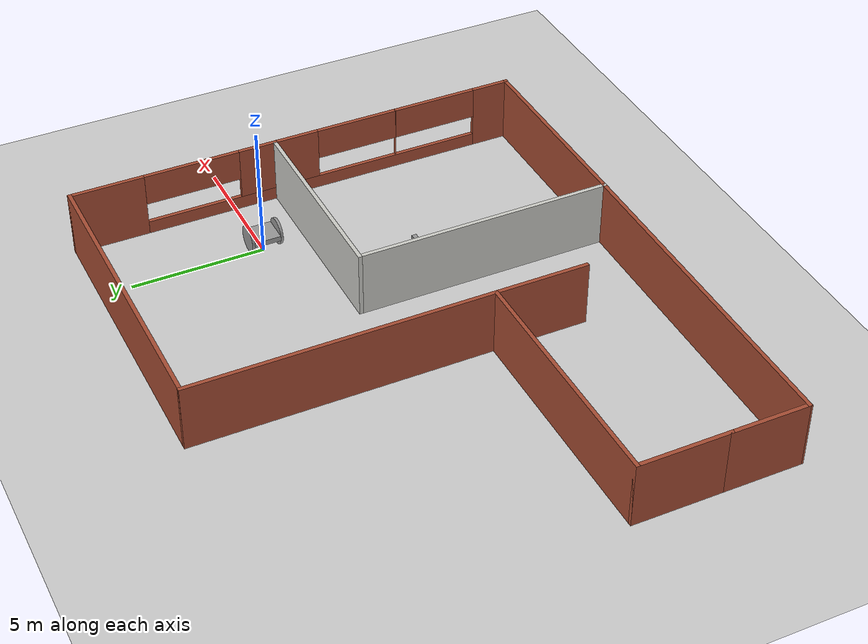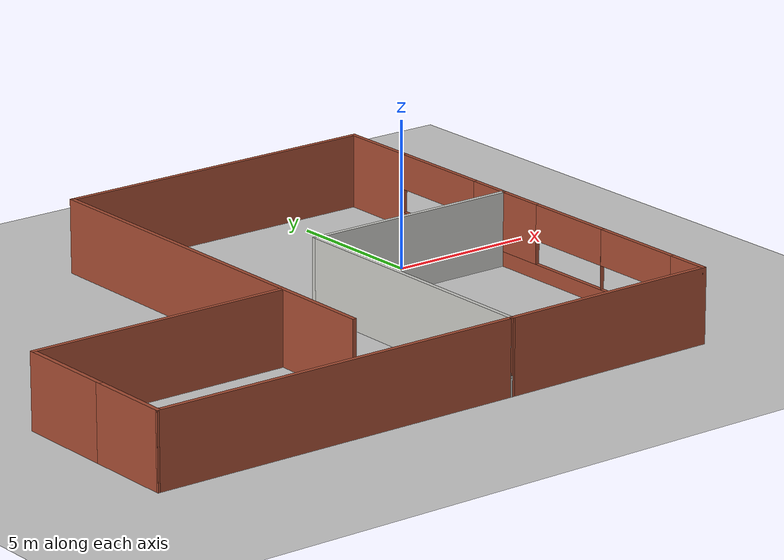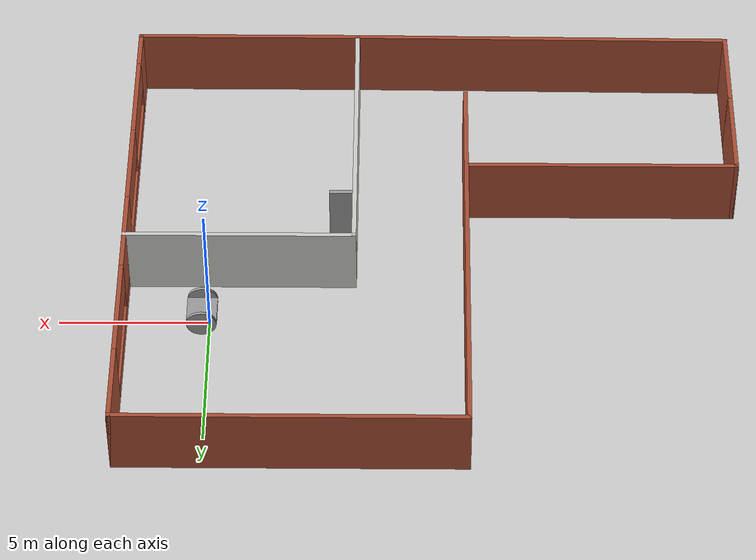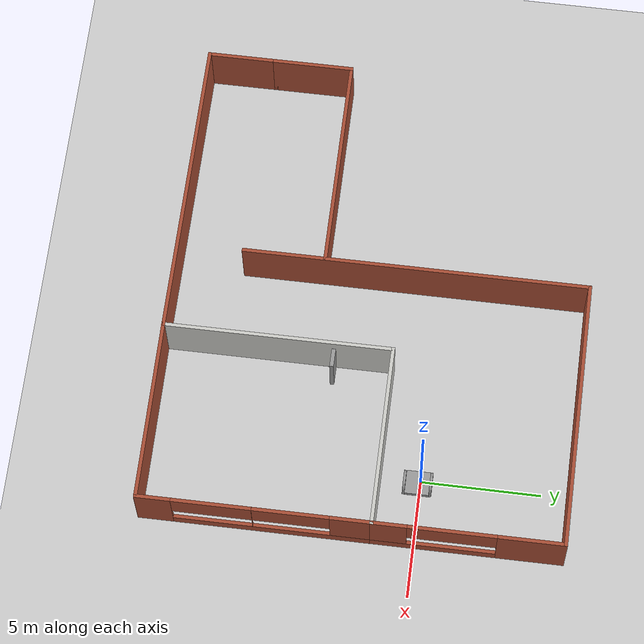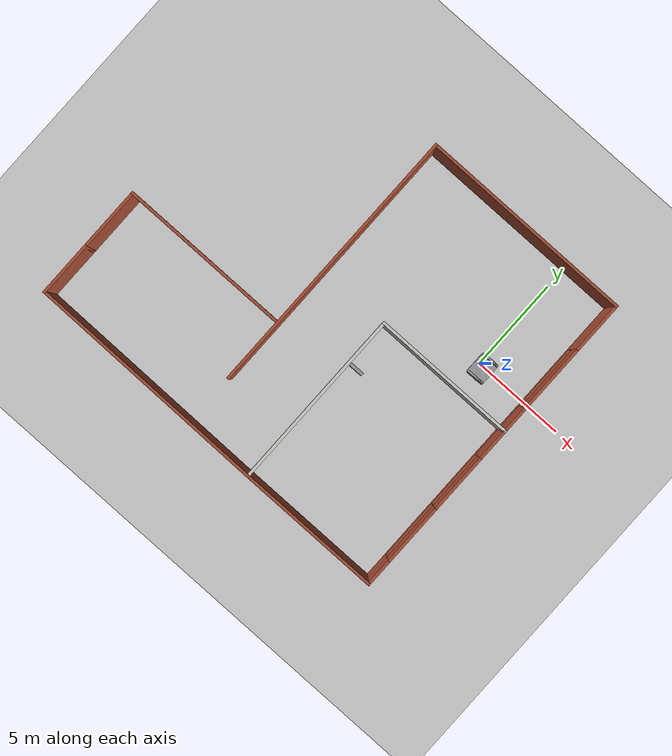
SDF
<sdf version="1.6">
 <world name="default">
  <light name="sun" type="directional">
   <pose>0 0 10 0 -0 0</pose>
   <diffuse>0.8 0.8 0.8 1</diffuse>
   <specular>0.2 0.2 0.2 1</specular>
   <attenuation>
    <range>1000</range>
    <constant>0.9</constant>
    <linear>0.01</linear>
    <quadratic>0.001</quadratic>
   </attenuation>
   <direction>-0.5 0.1 -0.9</direction>
  </light>
  <model name="ground_plane">
   <static>1</static>
   <link name="link">
    <collision name="collision">
     <geometry><plane><normal>0 0 1</normal><size>100 100</size></plane></geometry>
     <surface>
      <contact><collide_bitmask>65535</collide_bitmask></contact>
      <friction><ode><mu>100</mu><mu2>50</mu2></ode></friction>
     </surface>
    </collision>
    <visual name="visual">
     <cast_shadows>0</cast_shadows>
     <geometry><plane><normal>0 0 1</normal><size>100 100</size></plane></geometry>
     <material>
      <script><uri>file://media/materials/scripts/gazebo.material</uri><name>Gazebo/Grey</name></script>
     </material>
    </visual>
   </link>
  </model>
  <gravity>0 0 -9.8</gravity>
  <magnetic_field>6e-06 2.3e-05 -4.2e-05</magnetic_field>
  <atmosphere type="adiabatic"/>
  <physics name="default_physics" default="0" type="ode">
   <max_step_size>0.001</max_step_size>
   <real_time_factor>1</real_time_factor>
   <real_time_update_rate>1000</real_time_update_rate>
  </physics>
  <scene><ambient>0.4 0.4 0.4 1</ambient><background>0.7 0.7 0.7 1</background><shadows>1</shadows></scene>
  <spherical_coordinates>
   <surface_model>EARTH_WGS84</surface_model>
   <latitude_deg>0</latitude_deg>
   <longitude_deg>0</longitude_deg>
   <elevation>0</elevation>
   <heading_deg>0</heading_deg>
  </spherical_coordinates>
  <model name="robot-model">
   <link name="link_0">
    <pose>0 0 -0.000106 0 -0 0</pose>
    <inertial>
     <mass>1</mass>
     <inertia>
      <ixx>0.166667</ixx>
      <ixy>0</ixy>
      <ixz>0</ixz>
      <iyy>0.166667</iyy>
      <iyz>0</iyz>
      <izz>0.166667</izz>
     </inertia>
    </inertial>
    <visual name="visual">
     <geometry><box><size>1 1 0.2</size></box></geometry>
     <material>
      <lighting>1</lighting>
      <script><uri>file://media/materials/scripts/gazebo.material</uri><name>Gazebo/Grey</name></script>
      <shader type="pixel"><normal_map>__default__</normal_map></shader>
      <ambient>0.3 0.3 0.3 1</ambient>
      <diffuse>0.7 0.7 0.7 1</diffuse>
      <specular>0.01 0.01 0.01 1</specular>
      <emissive>0 0 0 1</emissive>
     </material>
    </visual>
    <collision name="collision">
     <geometry><box><size>1 1 0.2</size></box></geometry>
     <surface>
      <friction>
       <ode><mu>1</mu><mu2>1</mu2><fdir1>0 0 0</fdir1><slip1>0</slip1><slip2>0</slip2></ode>
       <torsional>
        <coefficient>1</coefficient>
        <patch_radius>0</patch_radius>
        <surface_radius>0</surface_radius>
        <use_patch_radius>1</use_patch_radius>
        <ode><slip>0</slip></ode>
       </torsional>
      </friction>
      <bounce><restitution_coefficient>0</restitution_coefficient><threshold>1e+06</threshold></bounce>
      <contact>
       <collide_without_contact>0</collide_without_contact>
       <collide_without_contact_bitmask>1</collide_without_contact_bitmask>
       <collide_bitmask>1</collide_bitmask>
       <ode>
        <soft_cfm>0</soft_cfm>
        <soft_erp>0.2</soft_erp>
        <kp>1e+13</kp>
        <kd>1</kd>
        <max_vel>0.01</max_vel>
        <min_depth>0</min_depth>
       </ode>
       <bullet>
        <split_impulse>1</split_impulse>
        <split_impulse_penetration_threshold>-0.01</split_impulse_penetration_threshold>
        <soft_cfm>0</soft_cfm>
        <soft_erp>0.2</soft_erp>
        <kp>1e+13</kp>
        <kd>1</kd>
       </bullet>
      </contact>
     </surface>
    </collision>
   </link>
   <link name="link_1">
    <pose>0 -0.550048 5.3e-05 1.5707 -0 0</pose>
    <inertial>
     <mass>1</mass>
     <inertia><ixx>0.145833</ixx><ixy>0</ixy><ixz>0</ixz><iyy>0.145833</iyy><iyz>0</iyz><izz>0.125</izz></inertia>
    </inertial>
    <visual name="visual">
     <geometry><cylinder><radius>0.5</radius><length>0.1</length></cylinder></geometry>
     <material>
      <lighting>1</lighting>
      <script><uri>file://media/materials/scripts/gazebo.material</uri><name>Gazebo/Grey</name></script>
      <shader type="pixel"><normal_map>__default__</normal_map></shader>
      <ambient>0.3 0.3 0.3 1</ambient>
      <diffuse>0.7 0.7 0.7 1</diffuse>
      <specular>0.01 0.01 0.01 1</specular>
      <emissive>0 0 0 1</emissive>
     </material>
    </visual>
    <collision name="collision">
     <geometry><cylinder><radius>0.5</radius><length>0.1</length></cylinder></geometry>
     <surface>
      <friction>
       <ode><mu>1</mu><mu2>1</mu2><fdir1>0 0 0</fdir1><slip1>0</slip1><slip2>0</slip2></ode>
       <torsional>
        <coefficient>1</coefficient>
        <patch_radius>0</patch_radius>
        <surface_radius>0</surface_radius>
        <use_patch_radius>1</use_patch_radius>
        <ode><slip>0</slip></ode>
       </torsional>
      </friction>
      <bounce><restitution_coefficient>0</restitution_coefficient><threshold>1e+06</threshold></bounce>
      <contact>
       <collide_without_contact>0</collide_without_contact>
       <collide_without_contact_bitmask>1</collide_without_contact_bitmask>
       <collide_bitmask>1</collide_bitmask>
       <ode>
        <soft_cfm>0</soft_cfm>
        <soft_erp>0.2</soft_erp>
        <kp>1e+13</kp>
        <kd>1</kd>
        <max_vel>0.01</max_vel>
        <min_depth>0</min_depth>
       </ode>
       <bullet>
        <split_impulse>1</split_impulse>
        <split_impulse_penetration_threshold>-0.01</split_impulse_penetration_threshold>
        <soft_cfm>0</soft_cfm>
        <soft_erp>0.2</soft_erp>
        <kp>1e+13</kp>
        <kd>1</kd>
       </bullet>
      </contact>
     </surface>
    </collision>
   </link>
   <link name="link_1_clone">
    <pose>0 0.550048 5.3e-05 1.5707 -0 0</pose>
    <inertial>
     <mass>1</mass>
     <inertia><ixx>0.145833</ixx><ixy>0</ixy><ixz>0</ixz><iyy>0.145833</iyy><iyz>0</iyz><izz>0.125</izz></inertia>
    </inertial>
    <visual name="visual">
     <geometry><cylinder><radius>0.5</radius><length>0.1</length></cylinder></geometry>
     <material>
      <lighting>1</lighting>
      <script><uri>file://media/materials/scripts/gazebo.material</uri><name>Gazebo/Grey</name></script>
      <shader type="pixel"><normal_map>__default__</normal_map></shader>
      <ambient>0.3 0.3 0.3 1</ambient>
      <diffuse>0.7 0.7 0.7 1</diffuse>
      <specular>0.01 0.01 0.01 1</specular>
      <emissive>0 0 0 1</emissive>
     </material>
    </visual>
    <collision name="collision">
     <geometry><cylinder><radius>0.5</radius><length>0.1</length></cylinder></geometry>
     <surface>
      <friction>
       <ode><mu>1</mu><mu2>1</mu2><fdir1>0 0 0</fdir1><slip1>0</slip1><slip2>0</slip2></ode>
       <torsional>
        <coefficient>1</coefficient>
        <patch_radius>0</patch_radius>
        <surface_radius>0</surface_radius>
        <use_patch_radius>1</use_patch_radius>
        <ode><slip>0</slip></ode>
       </torsional>
      </friction>
      <bounce><restitution_coefficient>0</restitution_coefficient><threshold>1e+06</threshold></bounce>
      <contact>
       <collide_without_contact>0</collide_without_contact>
       <collide_without_contact_bitmask>1</collide_without_contact_bitmask>
       <collide_bitmask>1</collide_bitmask>
       <ode>
        <soft_cfm>0</soft_cfm>
        <soft_erp>0.2</soft_erp>
        <kp>1e+13</kp>
        <kd>1</kd>
        <max_vel>0.01</max_vel>
        <min_depth>0</min_depth>
       </ode>
       <bullet>
        <split_impulse>1</split_impulse>
        <split_impulse_penetration_threshold>-0.01</split_impulse_penetration_threshold>
        <soft_cfm>0</soft_cfm>
        <soft_erp>0.2</soft_erp>
        <kp>1e+13</kp>
        <kd>1</kd>
       </bullet>
      </contact>
     </surface>
    </collision>
   </link>
   <joint name="link_0_JOINT_0" type="revolute">
    <parent>link_0</parent>
    <child>link_1</child>
    <axis>
     <xyz>0 0 1</xyz>
     <use_parent_model_frame>0</use_parent_model_frame>
     <limit>
      <lower>-1.79769e+308</lower>
      <upper>1.79769e+308</upper>
      <effort>-1</effort>
      <velocity>-1</velocity>
     </limit>
     <dynamics>
      <spring_reference>0</spring_reference>
      <spring_stiffness>0</spring_stiffness>
      <damping>0</damping>
     </dynamics>
    </axis>
    <physics>
     <ode><limit><cfm>0</cfm><erp>0.2</erp></limit><suspension><cfm>0</cfm><erp>0.2</erp></suspension></ode>
    </physics>
   </joint>
   <joint name="link_0_JOINT_1" type="revolute">
    <parent>link_0</parent>
    <child>link_1_clone</child>
    <axis>
     <xyz>0 0 1</xyz>
     <use_parent_model_frame>0</use_parent_model_frame>
     <limit>
      <lower>-1.79769e+308</lower>
      <upper>1.79769e+308</upper>
      <effort>-1</effort>
      <velocity>-1</velocity>
     </limit>
     <dynamics>
      <spring_reference>0</spring_reference>
      <spring_stiffness>0</spring_stiffness>
      <damping>0</damping>
     </dynamics>
    </axis>
    <physics>
     <ode><limit><cfm>0</cfm><erp>0.2</erp></limit><suspension><cfm>0</cfm><erp>0.2</erp></suspension></ode>
    </physics>
   </joint>
   <static>0</static>
   <pose>0.239846 -0.110911 0.500106 0 -0 0</pose>
  </model>
  <model name="building-model">
   <pose>-7.41019 -2.6033 0 0 -0 0</pose>
   <link name="Door_0">
    <collision name="Door_0_Collision">
     <geometry><box><size>0.9 0.17 2</size></box></geometry>
     <pose>0 0 1 0 -0 0</pose>
    </collision>
    <visual name="Door_0_Visual">
     <pose>0 0 1 0 -0 0</pose>
     <geometry><box><size>0.9 0.17 2</size></box></geometry>
     <material>
      <script><uri>file://media/materials/scripts/gazebo.material</uri><name>Gazebo/Grey</name></script>
     </material>
    </visual>
    <pose>3.04476 -1.59285 0 0 -0 0</pose>
   </link>
   <link name="Wall_1">
    <collision name="Wall_1_Collision">
     <geometry><box><size>14.75 0.15 2.5</size></box></geometry>
     <pose>0 0 1.25 0 -0 0</pose>
    </collision>
    <visual name="Wall_1_Visual">
     <pose>0 0 1.25 0 -0 0</pose>
     <geometry><box><size>14.75 0.15 2.5</size></box></geometry>
     <material>
      <script><uri>file://media/materials/scripts/gazebo.material</uri><name>Gazebo/Bricks</name></script>
      <ambient>1 1 1 1</ambient>
     </material>
     <meta><layer>0</layer></meta>
    </visual>
    <pose>-1.11923 1.42528 0 0 -0 1.5708</pose>
   </link>
   <link name="Wall_10">
    <collision name="Wall_10_Collision">
     <geometry><box><size>9.25 0.15 2.5</size></box></geometry>
     <pose>0 0 1.25 0 -0 0</pose>
    </collision>
    <visual name="Wall_10_Visual">
     <pose>0 0 1.25 0 -0 0</pose>
     <geometry><box><size>9.25 0.15 2.5</size></box></geometry>
     <material>
      <script><uri>file://media/materials/scripts/gazebo.material</uri><name>Gazebo/Bricks</name></script>
      <ambient>1 1 1 1</ambient>
     </material>
     <meta><layer>0</layer></meta>
    </visual>
    <pose>-5.6802 -2.42647 0 0 -0 0</pose>
   </link>
   <link name="Wall_18">
    <collision name="Wall_18_Collision">
     <geometry><box><size>3 0.15 2.5</size></box></geometry>
     <pose>0 0 1.25 0 -0 0</pose>
    </collision>
    <visual name="Wall_18_Visual">
     <pose>0 0 1.25 0 -0 0</pose>
     <geometry><box><size>3 0.15 2.5</size></box></geometry>
     <material>
      <script><uri>file://media/materials/scripts/gazebo.material</uri><name>Gazebo/Bricks</name></script>
      <ambient>1 1 1 1</ambient>
     </material>
     <meta><layer>0</layer></meta>
    </visual>
    <pose>-10.2302 -7.20148 0 0 0 -1.5708</pose>
   </link>
   <link name="Wall_19">
    <collision name="Wall_19_Collision">
     <geometry><box><size>13.0113 0.15 2.5</size></box></geometry>
     <pose>0 0 1.25 0 -0 0</pose>
    </collision>
    <visual name="Wall_19_Visual">
     <pose>0 0 1.25 0 -0 0</pose>
     <geometry><box><size>13.0113 0.15 2.5</size></box></geometry>
     <material>
      <script><uri>file://media/materials/scripts/gazebo.material</uri><name>Gazebo/Bricks</name></script>
      <ambient>1 1 1 1</ambient>
     </material>
     <meta><layer>0</layer></meta>
    </visual>
    <pose>-3.79971 -8.67559 0 0 0 -0.007638</pose>
   </link>
   <link name="Wall_2">
    <collision name="Wall_2_Collision">
     <geometry><box><size>11.5 0.15 2.5</size></box></geometry>
     <pose>0 0 1.25 0 -0 0</pose>
    </collision>
    <visual name="Wall_2_Visual">
     <pose>0 0 1.25 0 -0 0</pose>
     <geometry><box><size>11.5 0.15 2.5</size></box></geometry>
     <material>
      <script><uri>file://media/materials/scripts/gazebo.material</uri><name>Gazebo/Bricks</name></script>
      <ambient>1 1 1 1</ambient>
     </material>
     <meta><layer>0</layer></meta>
    </visual>
    <pose>4.55577 8.72528 0 0 -0 0</pose>
   </link>
   <link name="Wall_3">
    <pose>10.2308 4.80028 0 0 0 -1.5708</pose>
    <visual name="Wall_3_Visual_0">
     <pose>-2.58365 0 1.25 0 -0 0</pose>
     <geometry><box><size>2.8327 0.15 2.5</size></box></geometry>
     <material>
      <script><uri>file://media/materials/scripts/gazebo.material</uri><name>Gazebo/Bricks</name></script>
      <ambient>1 1 1 1</ambient>
     </material>
     <meta><layer>0</layer></meta>
    </visual>
    <collision name="Wall_3_Collision_0">
     <geometry><box><size>2.8327 0.15 2.5</size></box></geometry>
     <pose>-2.58365 0 1.25 0 -0 0</pose>
    </collision>
    <visual name="Wall_3_Visual_1">
     <pose>1.41635 0 0.25 0 -0 0</pose>
     <geometry><box><size>5.1673 0.15 0.5</size></box></geometry>
     <material>
      <script><uri>file://media/materials/scripts/gazebo.material</uri><name>Gazebo/Bricks</name></script>
      <ambient>1 1 1 1</ambient>
     </material>
     <meta><layer>0</layer></meta>
    </visual>
    <collision name="Wall_3_Collision_1">
     <geometry><box><size>5.1673 0.15 0.5</size></box></geometry>
     <pose>1.41635 0 0.25 0 -0 0</pose>
    </collision>
    <visual name="Wall_3_Visual_2">
     <pose>3.24442 0 1.5 0 -0 0</pose>
     <geometry><box><size>1.51117 0.15 2</size></box></geometry>
     <material>
      <script><uri>file://media/materials/scripts/gazebo.material</uri><name>Gazebo/Bricks</name></script>
      <ambient>1 1 1 1</ambient>
     </material>
     <meta><layer>0</layer></meta>
    </visual>
    <collision name="Wall_3_Collision_2">
     <geometry><box><size>1.51117 0.15 2</size></box></geometry>
     <pose>3.24442 0 1.5 0 -0 0</pose>
    </collision>
    <visual name="Wall_3_Visual_3">
     <pose>0.660769 0 1.9 0 -0 0</pose>
     <geometry><box><size>3.65613 0.15 1.2</size></box></geometry>
     <material>
      <script><uri>file://media/materials/scripts/gazebo.material</uri><name>Gazebo/Bricks</name></script>
      <ambient>1 1 1 1</ambient>
     </material>
     <meta><layer>0</layer></meta>
    </visual>
    <collision name="Wall_3_Collision_3">
     <geometry><box><size>3.65613 0.15 1.2</size></box></geometry>
     <pose>0.660769 0 1.9 0 -0 0</pose>
    </collision>
   </link>
   <link name="Wall_4">
    <collision name="Wall_4_Collision">
     <geometry><box><size>7.75 0.15 2.5</size></box></geometry>
     <pose>0 0 1.25 0 -0 0</pose>
    </collision>
    <visual name="Wall_4_Visual">
     <pose>0 0 1.25 0 -0 0</pose>
     <geometry><box><size>7.75 0.15 2.5</size></box></geometry>
     <material>
      <script><uri>file://media/materials/scripts/gazebo.material</uri><name>Gazebo/CeilingTiled</name></script>
      <ambient>1 1 1 1</ambient>
     </material>
     <meta><layer>0</layer></meta>
    </visual>
    <pose>6.43077 0.875285 0 0 -0 3.14159</pose>
   </link>
   <link name="Wall_5">
    <collision name="Wall_5_Collision">
     <geometry><box><size>9.75 0.15 2.5</size></box></geometry>
     <pose>0 0 1.25 0 -0 0</pose>
    </collision>
    <visual name="Wall_5_Visual">
     <pose>0 0 1.25 0 -0 0</pose>
     <geometry><box><size>9.75 0.15 2.5</size></box></geometry>
     <material>
      <script><uri>file://media/materials/scripts/gazebo.material</uri><name>Gazebo/CeilingTiled</name></script>
      <ambient>1 1 1 1</ambient>
     </material>
     <meta><layer>0</layer></meta>
    </visual>
    <pose>2.63077 -3.92471 0 0 0 -1.5708</pose>
   </link>
   <link name="Wall_6">
    <collision name="Wall_6_Collision">
     <geometry><box><size>7.75 0.15 2.5</size></box></geometry>
     <pose>0 0 1.25 0 -0 0</pose>
    </collision>
    <visual name="Wall_6_Visual">
     <pose>0 0 1.25 0 -0 0</pose>
     <geometry><box><size>7.75 0.15 2.5</size></box></geometry>
     <material>
      <script><uri>file://media/materials/scripts/gazebo.material</uri><name>Gazebo/Bricks</name></script>
      <ambient>1 1 1 1</ambient>
     </material>
     <meta><layer>0</layer></meta>
    </visual>
    <pose>6.43077 -8.72471 0 0 -0 0</pose>
   </link>
   <link name="Wall_7">
    <pose>10.2308 -3.92471 0 0 -0 1.5708</pose>
    <visual name="Wall_7_Visual_0">
     <pose>-4.12656 0 1.25 0 -0 0</pose>
     <geometry><box><size>1.49688 0.15 2.5</size></box></geometry>
     <material>
      <script><uri>file://media/materials/scripts/gazebo.material</uri><name>Gazebo/Bricks</name></script>
      <ambient>1 1 1 1</ambient>
     </material>
     <meta><layer>0</layer></meta>
    </visual>
    <collision name="Wall_7_Collision_0">
     <geometry><box><size>1.49688 0.15 2.5</size></box></geometry>
     <pose>-4.12656 0 1.25 0 -0 0</pose>
    </collision>
    <visual name="Wall_7_Visual_1">
     <pose>0.74844 0 0.25 0 -0 0</pose>
     <geometry><box><size>8.25312 0.15 0.5</size></box></geometry>
     <material>
      <script><uri>file://media/materials/scripts/gazebo.material</uri><name>Gazebo/Bricks</name></script>
      <ambient>1 1 1 1</ambient>
     </material>
     <meta><layer>0</layer></meta>
    </visual>
    <collision name="Wall_7_Collision_1">
     <geometry><box><size>8.25312 0.15 0.5</size></box></geometry>
     <pose>0.74844 0 0.25 0 -0 0</pose>
    </collision>
    <visual name="Wall_7_Visual_2">
     <pose>-0.081765 0 1.5 0 -0 0</pose>
     <geometry><box><size>0.004543 0.15 2</size></box></geometry>
     <material>
      <script><uri>file://media/materials/scripts/gazebo.material</uri><name>Gazebo/Bricks</name></script>
      <ambient>1 1 1 1</ambient>
     </material>
     <meta><layer>0</layer></meta>
    </visual>
    <collision name="Wall_7_Collision_2">
     <geometry><box><size>0.004543 0.15 2</size></box></geometry>
     <pose>-0.081765 0 1.5 0 -0 0</pose>
    </collision>
    <visual name="Wall_7_Visual_3">
     <pose>3.98445 0 1.5 0 -0 0</pose>
     <geometry><box><size>1.78109 0.15 2</size></box></geometry>
     <material>
      <script><uri>file://media/materials/scripts/gazebo.material</uri><name>Gazebo/Bricks</name></script>
      <ambient>1 1 1 1</ambient>
     </material>
     <meta><layer>0</layer></meta>
    </visual>
    <collision name="Wall_7_Collision_3">
     <geometry><box><size>1.78109 0.15 2</size></box></geometry>
     <pose>3.98445 0 1.5 0 -0 0</pose>
    </collision>
    <visual name="Wall_7_Visual_4">
     <pose>-1.73108 0 1.9 0 -0 0</pose>
     <geometry><box><size>3.29408 0.15 1.2</size></box></geometry>
     <material>
      <script><uri>file://media/materials/scripts/gazebo.material</uri><name>Gazebo/Bricks</name></script>
      <ambient>1 1 1 1</ambient>
     </material>
     <meta><layer>0</layer></meta>
    </visual>
    <collision name="Wall_7_Collision_4">
     <geometry><box><size>3.29408 0.15 1.2</size></box></geometry>
     <pose>-1.73108 0 1.9 0 -0 0</pose>
    </collision>
    <visual name="Wall_7_Visual_5">
     <pose>1.50721 0 1.9 0 -0 0</pose>
     <geometry><box><size>3.1734 0.15 1.2</size></box></geometry>
     <material>
      <script><uri>file://media/materials/scripts/gazebo.material</uri><name>Gazebo/Bricks</name></script>
      <ambient>1 1 1 1</ambient>
     </material>
     <meta><layer>0</layer></meta>
    </visual>
    <collision name="Wall_7_Collision_5">
     <geometry><box><size>3.1734 0.15 1.2</size></box></geometry>
     <pose>1.50721 0 1.9 0 -0 0</pose>
    </collision>
   </link>
   <link name="Wall_9">
    <collision name="Wall_9_Collision">
     <geometry><box><size>3.5 0.15 2.5</size></box></geometry>
     <pose>0 0 1.25 0 -0 0</pose>
    </collision>
    <visual name="Wall_9_Visual">
     <pose>0 0 1.25 0 -0 0</pose>
     <geometry><box><size>3.5 0.15 2.5</size></box></geometry>
     <material>
      <script><uri>file://media/materials/scripts/gazebo.material</uri><name>Gazebo/Bricks</name></script>
      <ambient>1 1 1 1</ambient>
     </material>
     <meta><layer>0</layer></meta>
    </visual>
    <pose>-10.2302 -4.10147 0 0 -0 1.5708</pose>
   </link>
   <static>1</static>
  </model>
 </world>
</sdf>
